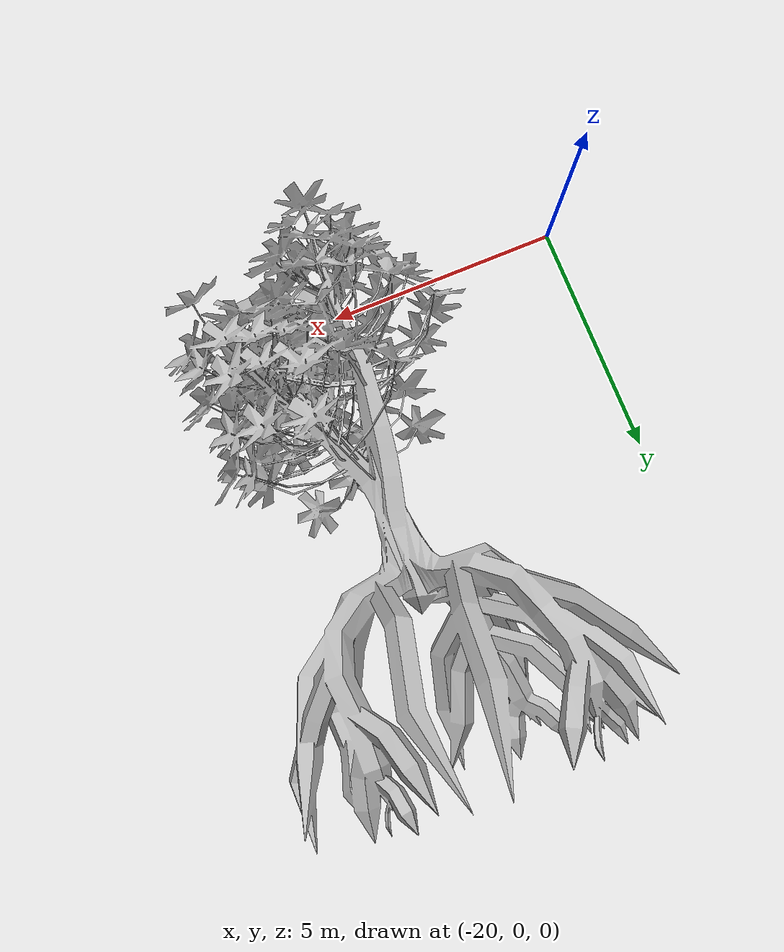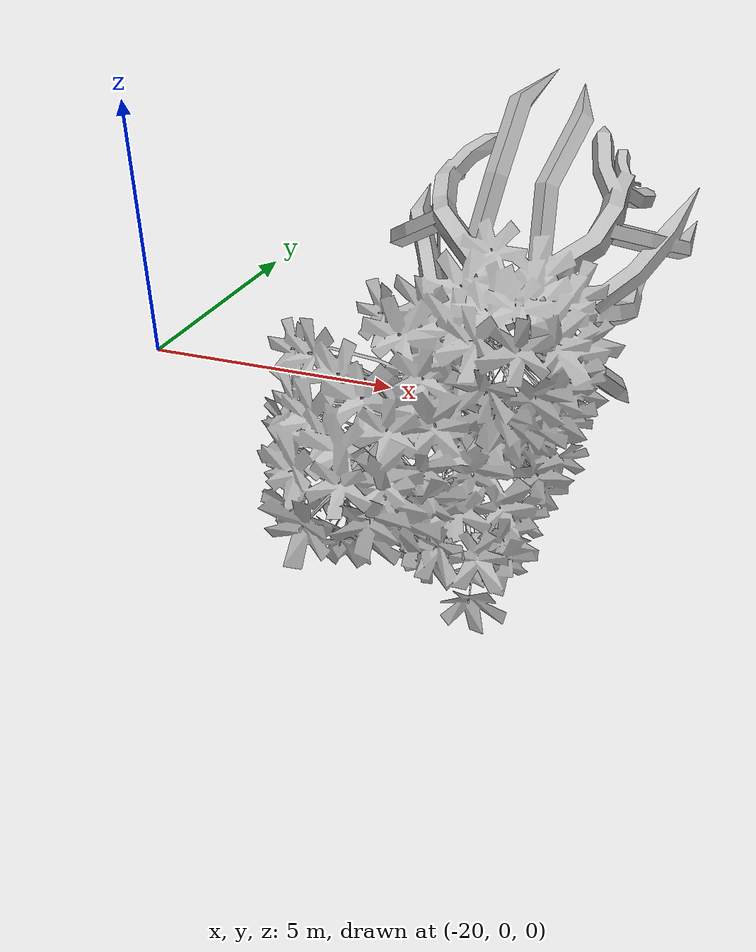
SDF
<?xml version="1.0" ?>
<sdf version="1.10">
  <model name="mangrove_06_14m">
    <pose>0 0 0 0 0 0</pose>
    <static>true</static>
    <link name="visual_only_link">
      <!-- Terrain at (14, 7) is approximately 0.03 m above world zero. -->
      <pose>-14.250 9.300 -0.20 1.5708 0 0</pose>
      <visual name="imported_mangrove_visual"><geometry><mesh><uri>model://mangrove_imported/meshes/Mangrovetree.glb</uri><scale>5.0 5.0 5.0</scale></mesh></geometry></visual>
    </link>
    <!-- The converted GLB mesh is the authoritative visual and collision geometry. -->
    <!-- A mesh collision is used so Gazebo physics and LiDAR can detect the tree shape. -->
    <link name="glb_collision_link">
      <pose>0 0 1.000 0 0 0</pose>
      <collision name="glb_mesh_collision">
        <geometry><cylinder><radius>1.2</radius><length>4.7</length></cylinder></geometry>
      </collision>
    </link>
  </model>
</sdf>
